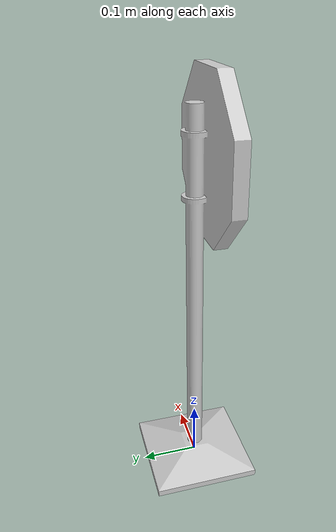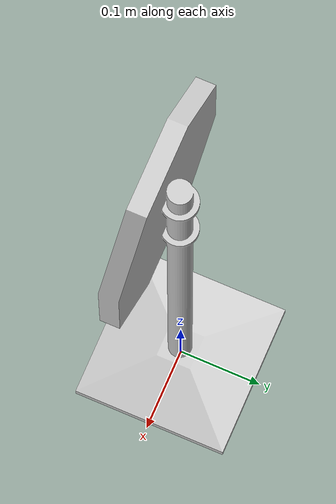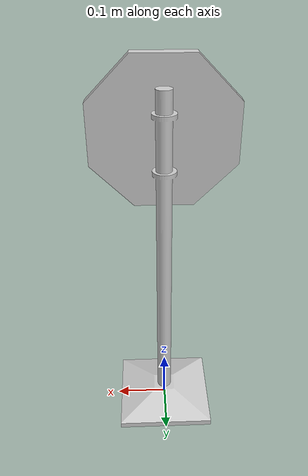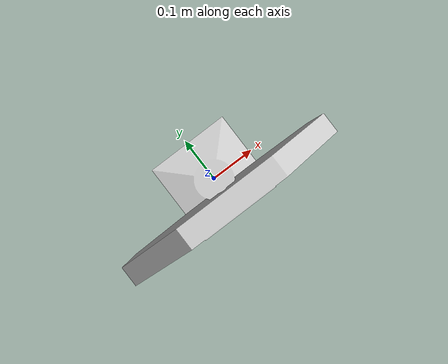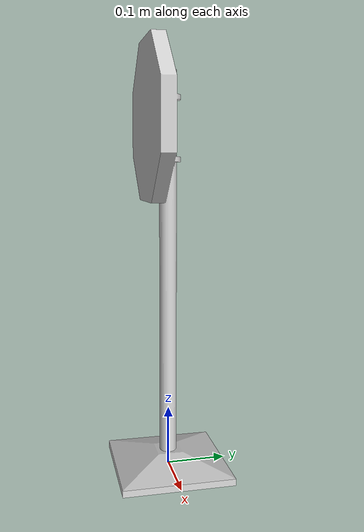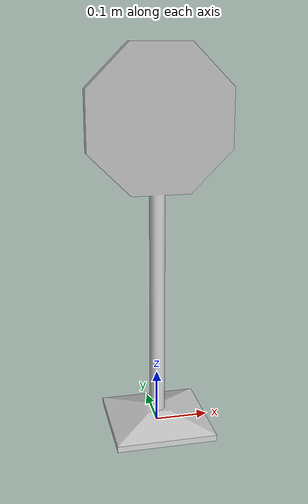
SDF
<?xml version='1.0'?>
<sdf version='1.7'>
  <model name='stop'>
    <model name='sign'>
      <static>1</static>
      <pose>0 -2e-06 0 0 -0 0</pose>
      <link name='stop_sign'>
        <pose>0 0 0 0 -0 0</pose>
        <visual name='sign'>
          <geometry>
            <mesh>
              <scale>0.25 0.25 0.25</scale>
              <uri>model://dur/meshes/dur.dae</uri>
            </mesh>
          </geometry>
        </visual>
        <collision name='collision'>
          <geometry>
            <mesh>
              <scale>0.25 0.25 0.25</scale>
              <uri>model://dur/meshes/dur.dae</uri>
            </mesh>
          </geometry>
        </collision>
      </link>
    </model>
    <static>0</static>
    <allow_auto_disable>1</allow_auto_disable>
  </model>
</sdf>
